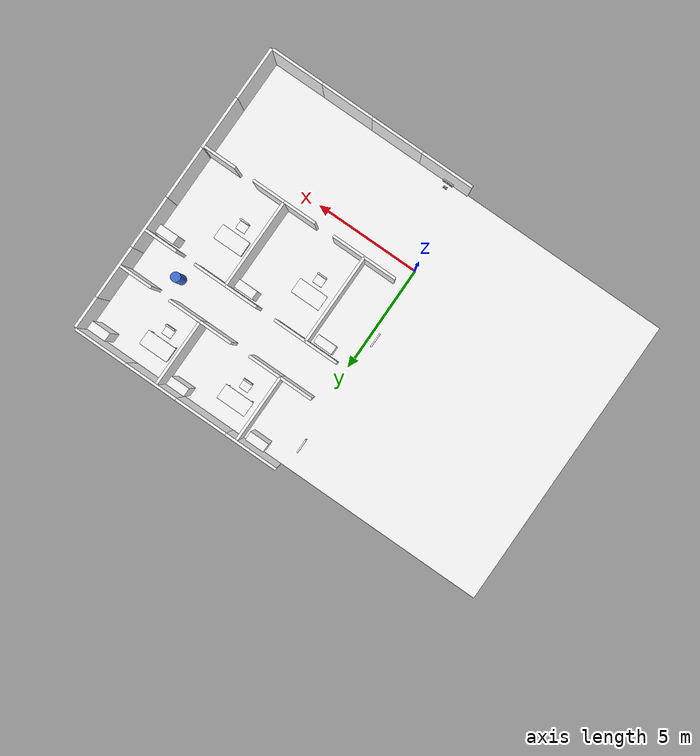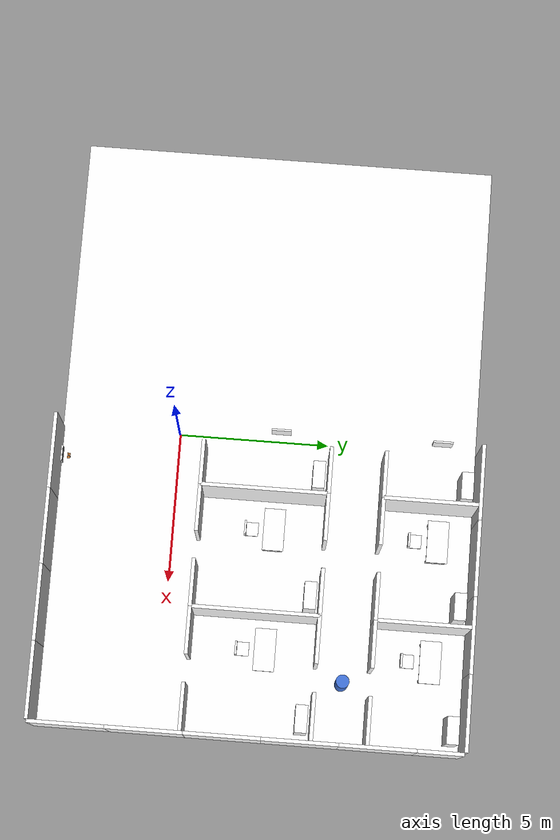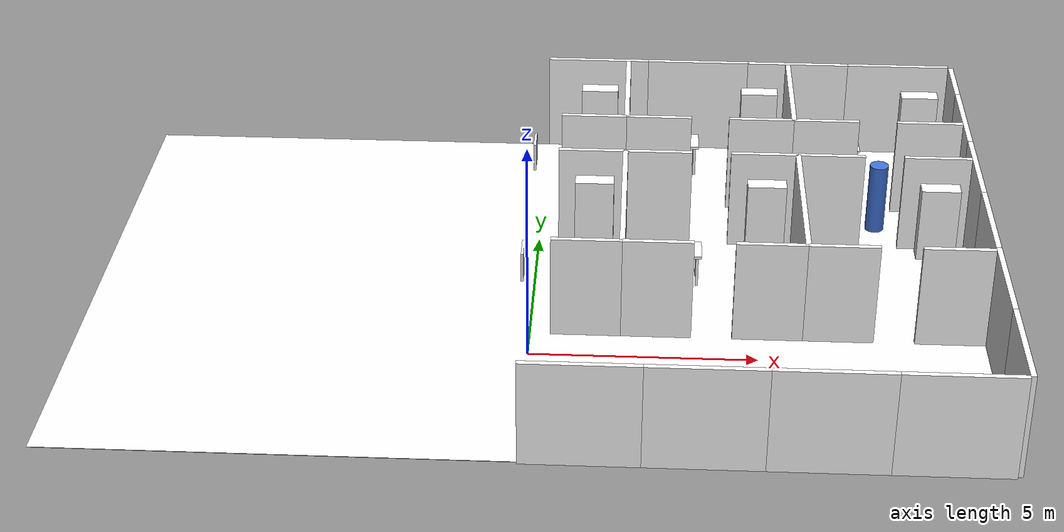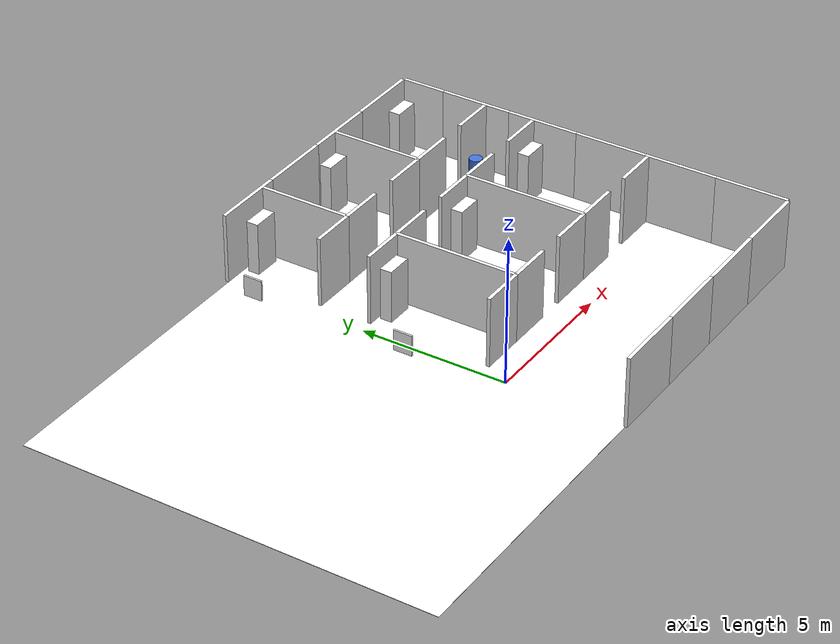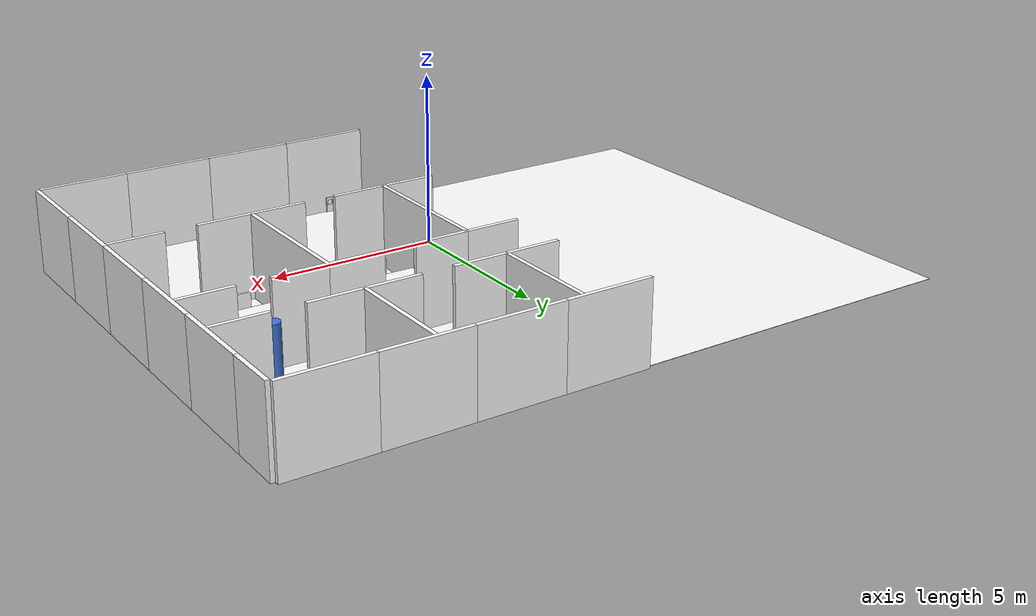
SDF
<sdf version="1.9">
 <world name="office">
  <model name="ground_plane">
   <static>true</static>
   <link name="link">
    <collision name="collision">
     <geometry><plane><normal>0 0 1</normal><size>100 100</size></plane></geometry>
     <surface><friction><ode><mu>1.0</mu><mu2>1.0</mu2></ode></friction></surface>
    </collision>
   </link>
  </model>
  <model name="floor">
   <static>true</static>
   <pose>0.00 3.00 -0.005 0 0 0</pose>
   <link name="link">
    <visual name="v">
     <geometry><box><size>20.0 14.0 0.01</size></box></geometry>
     <material>
      <diffuse>1 1 1 1</diffuse>
      <pbr>
       <metal>
        <albedo_map>model://room_materials/materials/textures/floor.png</albedo_map>
        <roughness>0.95</roughness>
       </metal>
      </pbr>
     </material>
    </visual>
   </link>
  </model>
  <model name="w_s8">
   <static>true</static>
   <pose>1.2500 -4.0100 1.2000 0 0 0</pose>
   <link name="link">
    <collision name="c"><geometry><box><size>2.5000 0.1200 2.4000</size></box></geometry></collision>
    <visual name="v">
     <geometry><box><size>2.5000 0.1200 2.4000</size></box></geometry>
     <material>
      <diffuse>1 1 1 1</diffuse>
      <pbr>
       <metal>
        <albedo_map>model://room_materials/materials/textures/office_008.png</albedo_map>
        <roughness>0.92</roughness>
       </metal>
      </pbr>
     </material>
    </visual>
   </link>
  </model>
  <model name="w_n9">
   <static>true</static>
   <pose>1.2500 10.0600 1.2000 0 0 0</pose>
   <link name="link">
    <collision name="c"><geometry><box><size>2.5000 0.1200 2.4000</size></box></geometry></collision>
    <visual name="v">
     <geometry><box><size>2.5000 0.1200 2.4000</size></box></geometry>
     <material>
      <diffuse>1 1 1 1</diffuse>
      <pbr>
       <metal>
        <albedo_map>model://room_materials/materials/textures/office_009.png</albedo_map>
        <roughness>0.92</roughness>
       </metal>
      </pbr>
     </material>
    </visual>
   </link>
  </model>
  <model name="w_s10">
   <static>true</static>
   <pose>3.7500 -4.0100 1.2000 0 0 0</pose>
   <link name="link">
    <collision name="c"><geometry><box><size>2.5000 0.1200 2.4000</size></box></geometry></collision>
    <visual name="v">
     <geometry><box><size>2.5000 0.1200 2.4000</size></box></geometry>
     <material>
      <diffuse>1 1 1 1</diffuse>
      <pbr>
       <metal>
        <albedo_map>model://room_materials/materials/textures/office_010.png</albedo_map>
        <roughness>0.92</roughness>
       </metal>
      </pbr>
     </material>
    </visual>
   </link>
  </model>
  <model name="w_n11">
   <static>true</static>
   <pose>3.7500 10.0600 1.2000 0 0 0</pose>
   <link name="link">
    <collision name="c"><geometry><box><size>2.5000 0.1200 2.4000</size></box></geometry></collision>
    <visual name="v">
     <geometry><box><size>2.5000 0.1200 2.4000</size></box></geometry>
     <material>
      <diffuse>1 1 1 1</diffuse>
      <pbr>
       <metal>
        <albedo_map>model://room_materials/materials/textures/office_011.png</albedo_map>
        <roughness>0.92</roughness>
       </metal>
      </pbr>
     </material>
    </visual>
   </link>
  </model>
  <model name="w_s12">
   <static>true</static>
   <pose>6.2500 -4.0100 1.2000 0 0 0</pose>
   <link name="link">
    <collision name="c"><geometry><box><size>2.5000 0.1200 2.4000</size></box></geometry></collision>
    <visual name="v">
     <geometry><box><size>2.5000 0.1200 2.4000</size></box></geometry>
     <material>
      <diffuse>1 1 1 1</diffuse>
      <pbr>
       <metal>
        <albedo_map>model://room_materials/materials/textures/office_012.png</albedo_map>
        <roughness>0.92</roughness>
       </metal>
      </pbr>
     </material>
    </visual>
   </link>
  </model>
  <model name="w_n13">
   <static>true</static>
   <pose>6.2500 10.0600 1.2000 0 0 0</pose>
   <link name="link">
    <collision name="c"><geometry><box><size>2.5000 0.1200 2.4000</size></box></geometry></collision>
    <visual name="v">
     <geometry><box><size>2.5000 0.1200 2.4000</size></box></geometry>
     <material>
      <diffuse>1 1 1 1</diffuse>
      <pbr>
       <metal>
        <albedo_map>model://room_materials/materials/textures/office_013.png</albedo_map>
        <roughness>0.92</roughness>
       </metal>
      </pbr>
     </material>
    </visual>
   </link>
  </model>
  <model name="w_s14">
   <static>true</static>
   <pose>8.7500 -4.0100 1.2000 0 0 0</pose>
   <link name="link">
    <collision name="c"><geometry><box><size>2.5000 0.1200 2.4000</size></box></geometry></collision>
    <visual name="v">
     <geometry><box><size>2.5000 0.1200 2.4000</size></box></geometry>
     <material>
      <diffuse>1 1 1 1</diffuse>
      <pbr>
       <metal>
        <albedo_map>model://room_materials/materials/textures/office_014.png</albedo_map>
        <roughness>0.92</roughness>
       </metal>
      </pbr>
     </material>
    </visual>
   </link>
  </model>
  <model name="w_n15">
   <static>true</static>
   <pose>8.7500 10.0600 1.2000 0 0 0</pose>
   <link name="link">
    <collision name="c"><geometry><box><size>2.5000 0.1200 2.4000</size></box></geometry></collision>
    <visual name="v">
     <geometry><box><size>2.5000 0.1200 2.4000</size></box></geometry>
     <material>
      <diffuse>1 1 1 1</diffuse>
      <pbr>
       <metal>
        <albedo_map>model://room_materials/materials/textures/office_015.png</albedo_map>
        <roughness>0.92</roughness>
       </metal>
      </pbr>
     </material>
    </visual>
   </link>
  </model>
  <model name="w_e17">
   <static>true</static>
   <pose>10.0600 -2.7500 1.2000 0 0 0</pose>
   <link name="link">
    <collision name="c"><geometry><box><size>0.1200 2.5000 2.4000</size></box></geometry></collision>
    <visual name="v">
     <geometry><box><size>0.1200 2.5000 2.4000</size></box></geometry>
     <material>
      <diffuse>1 1 1 1</diffuse>
      <pbr>
       <metal>
        <albedo_map>model://room_materials/materials/textures/office_017.png</albedo_map>
        <roughness>0.92</roughness>
       </metal>
      </pbr>
     </material>
    </visual>
   </link>
  </model>
  <model name="w_e19">
   <static>true</static>
   <pose>10.0600 -0.2500 1.2000 0 0 0</pose>
   <link name="link">
    <collision name="c"><geometry><box><size>0.1200 2.5000 2.4000</size></box></geometry></collision>
    <visual name="v">
     <geometry><box><size>0.1200 2.5000 2.4000</size></box></geometry>
     <material>
      <diffuse>1 1 1 1</diffuse>
      <pbr>
       <metal>
        <albedo_map>model://room_materials/materials/textures/office_019.png</albedo_map>
        <roughness>0.92</roughness>
       </metal>
      </pbr>
     </material>
    </visual>
   </link>
  </model>
  <model name="w_e21">
   <static>true</static>
   <pose>10.0600 2.2500 1.2000 0 0 0</pose>
   <link name="link">
    <collision name="c"><geometry><box><size>0.1200 2.5000 2.4000</size></box></geometry></collision>
    <visual name="v">
     <geometry><box><size>0.1200 2.5000 2.4000</size></box></geometry>
     <material>
      <diffuse>1 1 1 1</diffuse>
      <pbr>
       <metal>
        <albedo_map>model://room_materials/materials/textures/office_021.png</albedo_map>
        <roughness>0.92</roughness>
       </metal>
      </pbr>
     </material>
    </visual>
   </link>
  </model>
  <model name="w_e23">
   <static>true</static>
   <pose>10.0600 4.7500 1.2000 0 0 0</pose>
   <link name="link">
    <collision name="c"><geometry><box><size>0.1200 2.5000 2.4000</size></box></geometry></collision>
    <visual name="v">
     <geometry><box><size>0.1200 2.5000 2.4000</size></box></geometry>
     <material>
      <diffuse>1 1 1 1</diffuse>
      <pbr>
       <metal>
        <albedo_map>model://room_materials/materials/textures/office_023.png</albedo_map>
        <roughness>0.92</roughness>
       </metal>
      </pbr>
     </material>
    </visual>
   </link>
  </model>
  <model name="w_e25">
   <static>true</static>
   <pose>10.0600 7.2500 1.2000 0 0 0</pose>
   <link name="link">
    <collision name="c"><geometry><box><size>0.1200 2.5000 2.4000</size></box></geometry></collision>
    <visual name="v">
     <geometry><box><size>0.1200 2.5000 2.4000</size></box></geometry>
     <material>
      <diffuse>1 1 1 1</diffuse>
      <pbr>
       <metal>
        <albedo_map>model://room_materials/materials/textures/office_025.png</albedo_map>
        <roughness>0.92</roughness>
       </metal>
      </pbr>
     </material>
    </visual>
   </link>
  </model>
  <model name="w_e27">
   <static>true</static>
   <pose>10.0600 9.2500 1.2000 0 0 0</pose>
   <link name="link">
    <collision name="c"><geometry><box><size>0.1200 1.5000 2.4000</size></box></geometry></collision>
    <visual name="v">
     <geometry><box><size>0.1200 1.5000 2.4000</size></box></geometry>
     <material>
      <diffuse>1 1 1 1</diffuse>
      <pbr>
       <metal>
        <albedo_map>model://room_materials/materials/textures/office_027.png</albedo_map>
        <roughness>0.92</roughness>
       </metal>
      </pbr>
     </material>
    </visual>
   </link>
  </model>
  <model name="cA_n_2b">
   <static>true</static>
   <pose>1.2250 0.9000 1.2000 0 0 0</pose>
   <link name="link">
    <collision name="c"><geometry><box><size>1.5500 0.1200 2.4000</size></box></geometry></collision>
    <visual name="v">
     <geometry><box><size>1.5500 0.1200 2.4000</size></box></geometry>
     <material>
      <diffuse>1 1 1 1</diffuse>
      <pbr>
       <metal>
        <albedo_map>model://room_materials/materials/textures/office_033.png</albedo_map>
        <roughness>0.92</roughness>
       </metal>
      </pbr>
     </material>
    </visual>
   </link>
  </model>
  <model name="cA_n_3a">
   <static>true</static>
   <pose>2.7750 0.9000 1.2000 0 0 0</pose>
   <link name="link">
    <collision name="c"><geometry><box><size>1.5500 0.1200 2.4000</size></box></geometry></collision>
    <visual name="v">
     <geometry><box><size>1.5500 0.1200 2.4000</size></box></geometry>
     <material>
      <diffuse>1 1 1 1</diffuse>
      <pbr>
       <metal>
        <albedo_map>model://room_materials/materials/textures/office_034.png</albedo_map>
        <roughness>0.92</roughness>
       </metal>
      </pbr>
     </material>
    </visual>
   </link>
  </model>
  <model name="cA_n_3b">
   <static>true</static>
   <pose>5.2250 0.9000 1.2000 0 0 0</pose>
   <link name="link">
    <collision name="c"><geometry><box><size>1.5500 0.1200 2.4000</size></box></geometry></collision>
    <visual name="v">
     <geometry><box><size>1.5500 0.1200 2.4000</size></box></geometry>
     <material>
      <diffuse>1 1 1 1</diffuse>
      <pbr>
       <metal>
        <albedo_map>model://room_materials/materials/textures/office_035.png</albedo_map>
        <roughness>0.92</roughness>
       </metal>
      </pbr>
     </material>
    </visual>
   </link>
  </model>
  <model name="cA_n_4a">
   <static>true</static>
   <pose>6.7750 0.9000 1.2000 0 0 0</pose>
   <link name="link">
    <collision name="c"><geometry><box><size>1.5500 0.1200 2.4000</size></box></geometry></collision>
    <visual name="v">
     <geometry><box><size>1.5500 0.1200 2.4000</size></box></geometry>
     <material>
      <diffuse>1 1 1 1</diffuse>
      <pbr>
       <metal>
        <albedo_map>model://room_materials/materials/textures/office_036.png</albedo_map>
        <roughness>0.92</roughness>
       </metal>
      </pbr>
     </material>
    </visual>
   </link>
  </model>
  <model name="cA_n_4b">
   <static>true</static>
   <pose>9.2250 0.9000 1.2000 0 0 0</pose>
   <link name="link">
    <collision name="c"><geometry><box><size>1.5500 0.1200 2.4000</size></box></geometry></collision>
    <visual name="v">
     <geometry><box><size>1.5500 0.1200 2.4000</size></box></geometry>
     <material>
      <diffuse>1 1 1 1</diffuse>
      <pbr>
       <metal>
        <albedo_map>model://room_materials/materials/textures/office_037.png</albedo_map>
        <roughness>0.92</roughness>
       </metal>
      </pbr>
     </material>
    </visual>
   </link>
  </model>
  <model name="cB_s_2b">
   <static>true</static>
   <pose>1.2250 5.1000 1.2000 0 0 0</pose>
   <link name="link">
    <collision name="c"><geometry><box><size>1.5500 0.1200 2.4000</size></box></geometry></collision>
    <visual name="v">
     <geometry><box><size>1.5500 0.1200 2.4000</size></box></geometry>
     <material>
      <diffuse>1 1 1 1</diffuse>
      <pbr>
       <metal>
        <albedo_map>model://room_materials/materials/textures/office_043.png</albedo_map>
        <roughness>0.92</roughness>
       </metal>
      </pbr>
     </material>
    </visual>
   </link>
  </model>
  <model name="cB_s_3a">
   <static>true</static>
   <pose>2.7750 5.1000 1.2000 0 0 0</pose>
   <link name="link">
    <collision name="c"><geometry><box><size>1.5500 0.1200 2.4000</size></box></geometry></collision>
    <visual name="v">
     <geometry><box><size>1.5500 0.1200 2.4000</size></box></geometry>
     <material>
      <diffuse>1 1 1 1</diffuse>
      <pbr>
       <metal>
        <albedo_map>model://room_materials/materials/textures/office_044.png</albedo_map>
        <roughness>0.92</roughness>
       </metal>
      </pbr>
     </material>
    </visual>
   </link>
  </model>
  <model name="cB_s_3b">
   <static>true</static>
   <pose>5.2250 5.1000 1.2000 0 0 0</pose>
   <link name="link">
    <collision name="c"><geometry><box><size>1.5500 0.1200 2.4000</size></box></geometry></collision>
    <visual name="v">
     <geometry><box><size>1.5500 0.1200 2.4000</size></box></geometry>
     <material>
      <diffuse>1 1 1 1</diffuse>
      <pbr>
       <metal>
        <albedo_map>model://room_materials/materials/textures/office_045.png</albedo_map>
        <roughness>0.92</roughness>
       </metal>
      </pbr>
     </material>
    </visual>
   </link>
  </model>
  <model name="cB_s_4a">
   <static>true</static>
   <pose>6.7750 5.1000 1.2000 0 0 0</pose>
   <link name="link">
    <collision name="c"><geometry><box><size>1.5500 0.1200 2.4000</size></box></geometry></collision>
    <visual name="v">
     <geometry><box><size>1.5500 0.1200 2.4000</size></box></geometry>
     <material>
      <diffuse>1 1 1 1</diffuse>
      <pbr>
       <metal>
        <albedo_map>model://room_materials/materials/textures/office_046.png</albedo_map>
        <roughness>0.92</roughness>
       </metal>
      </pbr>
     </material>
    </visual>
   </link>
  </model>
  <model name="cB_s_4b">
   <static>true</static>
   <pose>9.2250 5.1000 1.2000 0 0 0</pose>
   <link name="link">
    <collision name="c"><geometry><box><size>1.5500 0.1200 2.4000</size></box></geometry></collision>
    <visual name="v">
     <geometry><box><size>1.5500 0.1200 2.4000</size></box></geometry>
     <material>
      <diffuse>1 1 1 1</diffuse>
      <pbr>
       <metal>
        <albedo_map>model://room_materials/materials/textures/office_047.png</albedo_map>
        <roughness>0.92</roughness>
       </metal>
      </pbr>
     </material>
    </visual>
   </link>
  </model>
  <model name="cB_n_2b">
   <static>true</static>
   <pose>1.2250 6.9000 1.2000 0 0 0</pose>
   <link name="link">
    <collision name="c"><geometry><box><size>1.5500 0.1200 2.4000</size></box></geometry></collision>
    <visual name="v">
     <geometry><box><size>1.5500 0.1200 2.4000</size></box></geometry>
     <material>
      <diffuse>1 1 1 1</diffuse>
      <pbr>
       <metal>
        <albedo_map>model://room_materials/materials/textures/office_053.png</albedo_map>
        <roughness>0.92</roughness>
       </metal>
      </pbr>
     </material>
    </visual>
   </link>
  </model>
  <model name="cB_n_3a">
   <static>true</static>
   <pose>2.7750 6.9000 1.2000 0 0 0</pose>
   <link name="link">
    <collision name="c"><geometry><box><size>1.5500 0.1200 2.4000</size></box></geometry></collision>
    <visual name="v">
     <geometry><box><size>1.5500 0.1200 2.4000</size></box></geometry>
     <material>
      <diffuse>1 1 1 1</diffuse>
      <pbr>
       <metal>
        <albedo_map>model://room_materials/materials/textures/office_054.png</albedo_map>
        <roughness>0.92</roughness>
       </metal>
      </pbr>
     </material>
    </visual>
   </link>
  </model>
  <model name="cB_n_3b">
   <static>true</static>
   <pose>5.2250 6.9000 1.2000 0 0 0</pose>
   <link name="link">
    <collision name="c"><geometry><box><size>1.5500 0.1200 2.4000</size></box></geometry></collision>
    <visual name="v">
     <geometry><box><size>1.5500 0.1200 2.4000</size></box></geometry>
     <material>
      <diffuse>1 1 1 1</diffuse>
      <pbr>
       <metal>
        <albedo_map>model://room_materials/materials/textures/office_055.png</albedo_map>
        <roughness>0.92</roughness>
       </metal>
      </pbr>
     </material>
    </visual>
   </link>
  </model>
  <model name="cB_n_4a">
   <static>true</static>
   <pose>6.7750 6.9000 1.2000 0 0 0</pose>
   <link name="link">
    <collision name="c"><geometry><box><size>1.5500 0.1200 2.4000</size></box></geometry></collision>
    <visual name="v">
     <geometry><box><size>1.5500 0.1200 2.4000</size></box></geometry>
     <material>
      <diffuse>1 1 1 1</diffuse>
      <pbr>
       <metal>
        <albedo_map>model://room_materials/materials/textures/office_056.png</albedo_map>
        <roughness>0.92</roughness>
       </metal>
      </pbr>
     </material>
    </visual>
   </link>
  </model>
  <model name="cB_n_4b">
   <static>true</static>
   <pose>9.2250 6.9000 1.2000 0 0 0</pose>
   <link name="link">
    <collision name="c"><geometry><box><size>1.5500 0.1200 2.4000</size></box></geometry></collision>
    <visual name="v">
     <geometry><box><size>1.5500 0.1200 2.4000</size></box></geometry>
     <material>
      <diffuse>1 1 1 1</diffuse>
      <pbr>
       <metal>
        <albedo_map>model://room_materials/materials/textures/office_057.png</albedo_map>
        <roughness>0.92</roughness>
       </metal>
      </pbr>
     </material>
    </visual>
   </link>
  </model>
  <model name="p1_2">
   <static>true</static>
   <pose>2.0000 3.0000 1.2000 0 0 0</pose>
   <link name="link">
    <collision name="c"><geometry><box><size>0.1200 4.2000 2.4000</size></box></geometry></collision>
    <visual name="v">
     <geometry><box><size>0.1200 4.2000 2.4000</size></box></geometry>
     <material>
      <diffuse>1 1 1 1</diffuse>
      <pbr>
       <metal>
        <albedo_map>model://room_materials/materials/textures/office_062.png</albedo_map>
        <roughness>0.92</roughness>
       </metal>
      </pbr>
     </material>
    </visual>
   </link>
  </model>
  <model name="p2_2">
   <static>true</static>
   <pose>2.0000 8.4500 1.2000 0 0 0</pose>
   <link name="link">
    <collision name="c"><geometry><box><size>0.1200 3.1000 2.4000</size></box></geometry></collision>
    <visual name="v">
     <geometry><box><size>0.1200 3.1000 2.4000</size></box></geometry>
     <material>
      <diffuse>1 1 1 1</diffuse>
      <pbr>
       <metal>
        <albedo_map>model://room_materials/materials/textures/office_063.png</albedo_map>
        <roughness>0.92</roughness>
       </metal>
      </pbr>
     </material>
    </visual>
   </link>
  </model>
  <model name="p1_3">
   <static>true</static>
   <pose>6.0000 3.0000 1.2000 0 0 0</pose>
   <link name="link">
    <collision name="c"><geometry><box><size>0.1200 4.2000 2.4000</size></box></geometry></collision>
    <visual name="v">
     <geometry><box><size>0.1200 4.2000 2.4000</size></box></geometry>
     <material>
      <diffuse>1 1 1 1</diffuse>
      <pbr>
       <metal>
        <albedo_map>model://room_materials/materials/textures/office_064.png</albedo_map>
        <roughness>0.92</roughness>
       </metal>
      </pbr>
     </material>
    </visual>
   </link>
  </model>
  <model name="p2_3">
   <static>true</static>
   <pose>6.0000 8.4500 1.2000 0 0 0</pose>
   <link name="link">
    <collision name="c"><geometry><box><size>0.1200 3.1000 2.4000</size></box></geometry></collision>
    <visual name="v">
     <geometry><box><size>0.1200 3.1000 2.4000</size></box></geometry>
     <material>
      <diffuse>1 1 1 1</diffuse>
      <pbr>
       <metal>
        <albedo_map>model://room_materials/materials/textures/office_065.png</albedo_map>
        <roughness>0.92</roughness>
       </metal>
      </pbr>
     </material>
    </visual>
   </link>
  </model>
  <model name="desk_2_l2">
   <static>true</static>
   <pose>-0.300 3.400 0.360 0 0 0</pose>
   <link name="link">
    <collision name="c"><geometry><box><size>0.060 0.660 0.720</size></box></geometry></collision>
    <visual name="v">
     <geometry><box><size>0.060 0.660 0.720</size></box></geometry>
     <material>
      <diffuse>1 1 1 1</diffuse>
      <pbr>
       <metal>
        <albedo_map>model://room_materials/materials/textures/crate.png</albedo_map>
        <roughness>0.92</roughness>
       </metal>
      </pbr>
     </material>
    </visual>
   </link>
  </model>
  <model name="shelf_2">
   <static>true</static>
   <pose>1.300 4.750 0.900 0 0 0</pose>
   <link name="link">
    <collision name="c"><geometry><box><size>0.900 0.400 1.800</size></box></geometry></collision>
    <visual name="v">
     <geometry><box><size>0.900 0.400 1.800</size></box></geometry>
     <material>
      <diffuse>1 1 1 1</diffuse>
      <pbr>
       <metal>
        <albedo_map>model://room_materials/materials/textures/poster3.png</albedo_map>
        <roughness>0.92</roughness>
       </metal>
      </pbr>
     </material>
    </visual>
   </link>
  </model>
  <model name="desk_3">
   <static>true</static>
   <pose>3.100 3.400 0.750 0 0 0</pose>
   <link name="link">
    <collision name="c"><geometry><box><size>1.400 0.700 0.060</size></box></geometry></collision>
    <visual name="v">
     <geometry><box><size>1.400 0.700 0.060</size></box></geometry>
     <material>
      <diffuse>1 1 1 1</diffuse>
      <pbr>
       <metal>
        <albedo_map>model://room_materials/materials/textures/poster4.png</albedo_map>
        <roughness>0.92</roughness>
       </metal>
      </pbr>
     </material>
    </visual>
   </link>
  </model>
  <model name="desk_3_l1">
   <static>true</static>
   <pose>2.500 3.400 0.360 0 0 0</pose>
   <link name="link">
    <collision name="c"><geometry><box><size>0.060 0.660 0.720</size></box></geometry></collision>
    <visual name="v">
     <geometry><box><size>0.060 0.660 0.720</size></box></geometry>
     <material>
      <diffuse>1 1 1 1</diffuse>
      <pbr>
       <metal>
        <albedo_map>model://room_materials/materials/textures/crate.png</albedo_map>
        <roughness>0.92</roughness>
       </metal>
      </pbr>
     </material>
    </visual>
   </link>
  </model>
  <model name="desk_3_l2">
   <static>true</static>
   <pose>3.700 3.400 0.360 0 0 0</pose>
   <link name="link">
    <collision name="c"><geometry><box><size>0.060 0.660 0.720</size></box></geometry></collision>
    <visual name="v">
     <geometry><box><size>0.060 0.660 0.720</size></box></geometry>
     <material>
      <diffuse>1 1 1 1</diffuse>
      <pbr>
       <metal>
        <albedo_map>model://room_materials/materials/textures/crate.png</albedo_map>
        <roughness>0.92</roughness>
       </metal>
      </pbr>
     </material>
    </visual>
   </link>
  </model>
  <model name="chair_3">
   <static>true</static>
   <pose>3.100 2.650 0.455 0 0 0</pose>
   <link name="link">
    <collision name="c"><geometry><box><size>0.450 0.450 0.050</size></box></geometry></collision>
    <visual name="v">
     <geometry><box><size>0.450 0.450 0.050</size></box></geometry>
     <material>
      <diffuse>1 1 1 1</diffuse>
      <pbr>
       <metal>
        <albedo_map>model://room_materials/materials/textures/crate.png</albedo_map>
        <roughness>0.92</roughness>
       </metal>
      </pbr>
     </material>
    </visual>
   </link>
  </model>
  <model name="chair_3_b">
   <static>true</static>
   <pose>3.100 2.450 0.680 0 0 0</pose>
   <link name="link">
    <collision name="c"><geometry><box><size>0.450 0.060 0.500</size></box></geometry></collision>
    <visual name="v">
     <geometry><box><size>0.450 0.060 0.500</size></box></geometry>
     <material>
      <diffuse>1 1 1 1</diffuse>
      <pbr>
       <metal>
        <albedo_map>model://room_materials/materials/textures/poster4.png</albedo_map>
        <roughness>0.92</roughness>
       </metal>
      </pbr>
     </material>
    </visual>
   </link>
  </model>
  <model name="shelf_3">
   <static>true</static>
   <pose>5.300 4.750 0.900 0 0 0</pose>
   <link name="link">
    <collision name="c"><geometry><box><size>0.900 0.400 1.800</size></box></geometry></collision>
    <visual name="v">
     <geometry><box><size>0.900 0.400 1.800</size></box></geometry>
     <material>
      <diffuse>1 1 1 1</diffuse>
      <pbr>
       <metal>
        <albedo_map>model://room_materials/materials/textures/poster4.png</albedo_map>
        <roughness>0.92</roughness>
       </metal>
      </pbr>
     </material>
    </visual>
   </link>
  </model>
  <model name="desk_4">
   <static>true</static>
   <pose>7.100 3.400 0.750 0 0 0</pose>
   <link name="link">
    <collision name="c"><geometry><box><size>1.400 0.700 0.060</size></box></geometry></collision>
    <visual name="v">
     <geometry><box><size>1.400 0.700 0.060</size></box></geometry>
     <material>
      <diffuse>1 1 1 1</diffuse>
      <pbr>
       <metal>
        <albedo_map>model://room_materials/materials/textures/poster5.png</albedo_map>
        <roughness>0.92</roughness>
       </metal>
      </pbr>
     </material>
    </visual>
   </link>
  </model>
  <model name="desk_4_l1">
   <static>true</static>
   <pose>6.500 3.400 0.360 0 0 0</pose>
   <link name="link">
    <collision name="c"><geometry><box><size>0.060 0.660 0.720</size></box></geometry></collision>
    <visual name="v">
     <geometry><box><size>0.060 0.660 0.720</size></box></geometry>
     <material>
      <diffuse>1 1 1 1</diffuse>
      <pbr>
       <metal>
        <albedo_map>model://room_materials/materials/textures/crate.png</albedo_map>
        <roughness>0.92</roughness>
       </metal>
      </pbr>
     </material>
    </visual>
   </link>
  </model>
  <model name="desk_4_l2">
   <static>true</static>
   <pose>7.700 3.400 0.360 0 0 0</pose>
   <link name="link">
    <collision name="c"><geometry><box><size>0.060 0.660 0.720</size></box></geometry></collision>
    <visual name="v">
     <geometry><box><size>0.060 0.660 0.720</size></box></geometry>
     <material>
      <diffuse>1 1 1 1</diffuse>
      <pbr>
       <metal>
        <albedo_map>model://room_materials/materials/textures/crate.png</albedo_map>
        <roughness>0.92</roughness>
       </metal>
      </pbr>
     </material>
    </visual>
   </link>
  </model>
  <model name="chair_4">
   <static>true</static>
   <pose>7.100 2.650 0.455 0 0 0</pose>
   <link name="link">
    <collision name="c"><geometry><box><size>0.450 0.450 0.050</size></box></geometry></collision>
    <visual name="v">
     <geometry><box><size>0.450 0.450 0.050</size></box></geometry>
     <material>
      <diffuse>1 1 1 1</diffuse>
      <pbr>
       <metal>
        <albedo_map>model://room_materials/materials/textures/crate.png</albedo_map>
        <roughness>0.92</roughness>
       </metal>
      </pbr>
     </material>
    </visual>
   </link>
  </model>
  <model name="chair_4_b">
   <static>true</static>
   <pose>7.100 2.450 0.680 0 0 0</pose>
   <link name="link">
    <collision name="c"><geometry><box><size>0.450 0.060 0.500</size></box></geometry></collision>
    <visual name="v">
     <geometry><box><size>0.450 0.060 0.500</size></box></geometry>
     <material>
      <diffuse>1 1 1 1</diffuse>
      <pbr>
       <metal>
        <albedo_map>model://room_materials/materials/textures/poster5.png</albedo_map>
        <roughness>0.92</roughness>
       </metal>
      </pbr>
     </material>
    </visual>
   </link>
  </model>
  <model name="shelf_4">
   <static>true</static>
   <pose>9.300 4.750 0.900 0 0 0</pose>
   <link name="link">
    <collision name="c"><geometry><box><size>0.900 0.400 1.800</size></box></geometry></collision>
    <visual name="v">
     <geometry><box><size>0.900 0.400 1.800</size></box></geometry>
     <material>
      <diffuse>1 1 1 1</diffuse>
      <pbr>
       <metal>
        <albedo_map>model://room_materials/materials/textures/poster5.png</albedo_map>
        <roughness>0.92</roughness>
       </metal>
      </pbr>
     </material>
    </visual>
   </link>
  </model>
  <model name="desk_7_l2">
   <static>true</static>
   <pose>-0.300 8.850 0.360 0 0 0</pose>
   <link name="link">
    <collision name="c"><geometry><box><size>0.060 0.660 0.720</size></box></geometry></collision>
    <visual name="v">
     <geometry><box><size>0.060 0.660 0.720</size></box></geometry>
     <material>
      <diffuse>1 1 1 1</diffuse>
      <pbr>
       <metal>
        <albedo_map>model://room_materials/materials/textures/crate.png</albedo_map>
        <roughness>0.92</roughness>
       </metal>
      </pbr>
     </material>
    </visual>
   </link>
  </model>
  <model name="shelf_7">
   <static>true</static>
   <pose>1.300 9.650 0.900 0 0 0</pose>
   <link name="link">
    <collision name="c"><geometry><box><size>0.900 0.400 1.800</size></box></geometry></collision>
    <visual name="v">
     <geometry><box><size>0.900 0.400 1.800</size></box></geometry>
     <material>
      <diffuse>1 1 1 1</diffuse>
      <pbr>
       <metal>
        <albedo_map>model://room_materials/materials/textures/poster8.png</albedo_map>
        <roughness>0.92</roughness>
       </metal>
      </pbr>
     </material>
    </visual>
   </link>
  </model>
  <model name="desk_8">
   <static>true</static>
   <pose>3.100 8.850 0.750 0 0 0</pose>
   <link name="link">
    <collision name="c"><geometry><box><size>1.400 0.700 0.060</size></box></geometry></collision>
    <visual name="v">
     <geometry><box><size>1.400 0.700 0.060</size></box></geometry>
     <material>
      <diffuse>1 1 1 1</diffuse>
      <pbr>
       <metal>
        <albedo_map>model://room_materials/materials/textures/poster1.png</albedo_map>
        <roughness>0.92</roughness>
       </metal>
      </pbr>
     </material>
    </visual>
   </link>
  </model>
  <model name="desk_8_l1">
   <static>true</static>
   <pose>2.500 8.850 0.360 0 0 0</pose>
   <link name="link">
    <collision name="c"><geometry><box><size>0.060 0.660 0.720</size></box></geometry></collision>
    <visual name="v">
     <geometry><box><size>0.060 0.660 0.720</size></box></geometry>
     <material>
      <diffuse>1 1 1 1</diffuse>
      <pbr>
       <metal>
        <albedo_map>model://room_materials/materials/textures/crate.png</albedo_map>
        <roughness>0.92</roughness>
       </metal>
      </pbr>
     </material>
    </visual>
   </link>
  </model>
  <model name="desk_8_l2">
   <static>true</static>
   <pose>3.700 8.850 0.360 0 0 0</pose>
   <link name="link">
    <collision name="c"><geometry><box><size>0.060 0.660 0.720</size></box></geometry></collision>
    <visual name="v">
     <geometry><box><size>0.060 0.660 0.720</size></box></geometry>
     <material>
      <diffuse>1 1 1 1</diffuse>
      <pbr>
       <metal>
        <albedo_map>model://room_materials/materials/textures/crate.png</albedo_map>
        <roughness>0.92</roughness>
       </metal>
      </pbr>
     </material>
    </visual>
   </link>
  </model>
  <model name="chair_8">
   <static>true</static>
   <pose>3.100 8.100 0.455 0 0 0</pose>
   <link name="link">
    <collision name="c"><geometry><box><size>0.450 0.450 0.050</size></box></geometry></collision>
    <visual name="v">
     <geometry><box><size>0.450 0.450 0.050</size></box></geometry>
     <material>
      <diffuse>1 1 1 1</diffuse>
      <pbr>
       <metal>
        <albedo_map>model://room_materials/materials/textures/crate.png</albedo_map>
        <roughness>0.92</roughness>
       </metal>
      </pbr>
     </material>
    </visual>
   </link>
  </model>
  <model name="chair_8_b">
   <static>true</static>
   <pose>3.100 7.900 0.680 0 0 0</pose>
   <link name="link">
    <collision name="c"><geometry><box><size>0.450 0.060 0.500</size></box></geometry></collision>
    <visual name="v">
     <geometry><box><size>0.450 0.060 0.500</size></box></geometry>
     <material>
      <diffuse>1 1 1 1</diffuse>
      <pbr>
       <metal>
        <albedo_map>model://room_materials/materials/textures/poster1.png</albedo_map>
        <roughness>0.92</roughness>
       </metal>
      </pbr>
     </material>
    </visual>
   </link>
  </model>
  <model name="shelf_8">
   <static>true</static>
   <pose>5.300 9.650 0.900 0 0 0</pose>
   <link name="link">
    <collision name="c"><geometry><box><size>0.900 0.400 1.800</size></box></geometry></collision>
    <visual name="v">
     <geometry><box><size>0.900 0.400 1.800</size></box></geometry>
     <material>
      <diffuse>1 1 1 1</diffuse>
      <pbr>
       <metal>
        <albedo_map>model://room_materials/materials/textures/poster1.png</albedo_map>
        <roughness>0.92</roughness>
       </metal>
      </pbr>
     </material>
    </visual>
   </link>
  </model>
  <model name="desk_9">
   <static>true</static>
   <pose>7.100 8.850 0.750 0 0 0</pose>
   <link name="link">
    <collision name="c"><geometry><box><size>1.400 0.700 0.060</size></box></geometry></collision>
    <visual name="v">
     <geometry><box><size>1.400 0.700 0.060</size></box></geometry>
     <material>
      <diffuse>1 1 1 1</diffuse>
      <pbr>
       <metal>
        <albedo_map>model://room_materials/materials/textures/poster2.png</albedo_map>
        <roughness>0.92</roughness>
       </metal>
      </pbr>
     </material>
    </visual>
   </link>
  </model>
  <model name="desk_9_l1">
   <static>true</static>
   <pose>6.500 8.850 0.360 0 0 0</pose>
   <link name="link">
    <collision name="c"><geometry><box><size>0.060 0.660 0.720</size></box></geometry></collision>
    <visual name="v">
     <geometry><box><size>0.060 0.660 0.720</size></box></geometry>
     <material>
      <diffuse>1 1 1 1</diffuse>
      <pbr>
       <metal>
        <albedo_map>model://room_materials/materials/textures/crate.png</albedo_map>
        <roughness>0.92</roughness>
       </metal>
      </pbr>
     </material>
    </visual>
   </link>
  </model>
  <model name="desk_9_l2">
   <static>true</static>
   <pose>7.700 8.850 0.360 0 0 0</pose>
   <link name="link">
    <collision name="c"><geometry><box><size>0.060 0.660 0.720</size></box></geometry></collision>
    <visual name="v">
     <geometry><box><size>0.060 0.660 0.720</size></box></geometry>
     <material>
      <diffuse>1 1 1 1</diffuse>
      <pbr>
       <metal>
        <albedo_map>model://room_materials/materials/textures/crate.png</albedo_map>
        <roughness>0.92</roughness>
       </metal>
      </pbr>
     </material>
    </visual>
   </link>
  </model>
  <model name="chair_9">
   <static>true</static>
   <pose>7.100 8.100 0.455 0 0 0</pose>
   <link name="link">
    <collision name="c"><geometry><box><size>0.450 0.450 0.050</size></box></geometry></collision>
    <visual name="v">
     <geometry><box><size>0.450 0.450 0.050</size></box></geometry>
     <material>
      <diffuse>1 1 1 1</diffuse>
      <pbr>
       <metal>
        <albedo_map>model://room_materials/materials/textures/crate.png</albedo_map>
        <roughness>0.92</roughness>
       </metal>
      </pbr>
     </material>
    </visual>
   </link>
  </model>
  <model name="chair_9_b">
   <static>true</static>
   <pose>7.100 7.900 0.680 0 0 0</pose>
   <link name="link">
    <collision name="c"><geometry><box><size>0.450 0.060 0.500</size></box></geometry></collision>
    <visual name="v">
     <geometry><box><size>0.450 0.060 0.500</size></box></geometry>
     <material>
      <diffuse>1 1 1 1</diffuse>
      <pbr>
       <metal>
        <albedo_map>model://room_materials/materials/textures/poster2.png</albedo_map>
        <roughness>0.92</roughness>
       </metal>
      </pbr>
     </material>
    </visual>
   </link>
  </model>
  <model name="shelf_9">
   <static>true</static>
   <pose>9.300 9.650 0.900 0 0 0</pose>
   <link name="link">
    <collision name="c"><geometry><box><size>0.900 0.400 1.800</size></box></geometry></collision>
    <visual name="v">
     <geometry><box><size>0.900 0.400 1.800</size></box></geometry>
     <material>
      <diffuse>1 1 1 1</diffuse>
      <pbr>
       <metal>
        <albedo_map>model://room_materials/materials/textures/poster2.png</albedo_map>
        <roughness>0.92</roughness>
       </metal>
      </pbr>
     </material>
    </visual>
   </link>
  </model>
  <model name="person_1">
   <pose>8.00 6.00 0.85 0 0 0</pose>
   <link name="link">
    <gravity>false</gravity>
    <inertial>
     <mass>70</mass>
     <inertia><ixx>200</ixx><iyy>200</iyy><izz>200</izz><ixy>0</ixy><ixz>0</ixz><iyz>0</iyz></inertia>
    </inertial>
    <collision name="c">
     <geometry><cylinder><radius>0.22</radius><length>1.70</length></cylinder></geometry>
    </collision>
    <visual name="v">
     <geometry><cylinder><radius>0.22</radius><length>1.70</length></cylinder></geometry>
     <material>
      <ambient>0.25 0.45 0.85 1</ambient>
      <diffuse>0.25 0.45 0.85 1</diffuse>
      <specular>0.2 0.2 0.2 1</specular>
     </material>
    </visual>
   </link>
   <plugin filename="gz-sim-velocity-control-system" name="gz::sim::systems::VelocityControl">
    <topic>/model/person_1/cmd_vel</topic>
   </plugin>
  </model>
  <model name="dock_station">
   <static>true</static>
   <link name="link">
    <visual name="dock_panel">
     <pose>1.0 -3.9250000000000003 0.225 0 0 0</pose>
     <geometry><box><size>0.52 0.05 0.45</size></box></geometry>
     <material>
      <diffuse>1 1 1 1</diffuse>
      <pbr>
       <metal>
        <albedo_map>model://room_materials/materials/textures/dock_body.png</albedo_map>
        <roughness>0.92</roughness>
       </metal>
      </pbr>
     </material>
    </visual>
    <collision name="dock_panel_c">
     <pose>1.0 -3.9250000000000003 0.225 0 0 0</pose>
     <geometry><box><size>0.52 0.05 0.45</size></box></geometry>
    </collision>
    <visual name="dock_marker_1">
     <pose>0.84 -3.898 0.31 0 0 0</pose>
     <geometry><box><size>0.14 0.008 0.14</size></box></geometry>
     <material>
      <diffuse>1 1 1 1</diffuse>
      <pbr>
       <metal>
        <albedo_map>model://room_materials/materials/textures/dock_marker_1.png</albedo_map>
        <roughness>0.92</roughness>
       </metal>
      </pbr>
     </material>
    </visual>
    <visual name="dock_marker_0">
     <pose>1.0 -3.898 0.31 0 0 0</pose>
     <geometry><box><size>0.14 0.008 0.14</size></box></geometry>
     <material>
      <diffuse>1 1 1 1</diffuse>
      <pbr>
       <metal>
        <albedo_map>model://room_materials/materials/textures/dock_marker_0.png</albedo_map>
        <roughness>0.92</roughness>
       </metal>
      </pbr>
     </material>
    </visual>
    <visual name="dock_marker_2">
     <pose>1.16 -3.898 0.31 0 0 0</pose>
     <geometry><box><size>0.14 0.008 0.14</size></box></geometry>
     <material>
      <diffuse>1 1 1 1</diffuse>
      <pbr>
       <metal>
        <albedo_map>model://room_materials/materials/textures/dock_marker_2.png</albedo_map>
        <roughness>0.92</roughness>
       </metal>
      </pbr>
     </material>
    </visual>
    <visual name="dock_plate_0">
     <pose>0.945 -3.72 0.02 0 0 0</pose>
     <geometry><box><size>0.075 0.1 0.04</size></box></geometry>
     <material><ambient>0.72 0.45 0.20 1</ambient><diffuse>0.72 0.45 0.20 1</diffuse></material>
    </visual>
    <collision name="dock_plate_0_c">
     <pose>0.945 -3.72 0.02 0 0 0</pose>
     <geometry><box><size>0.075 0.1 0.04</size></box></geometry>
    </collision>
    <visual name="dock_plate_1">
     <pose>1.055 -3.72 0.02 0 0 0</pose>
     <geometry><box><size>0.075 0.1 0.04</size></box></geometry>
     <material><ambient>0.72 0.45 0.20 1</ambient><diffuse>0.72 0.45 0.20 1</diffuse></material>
    </visual>
    <collision name="dock_plate_1_c">
     <pose>1.055 -3.72 0.02 0 0 0</pose>
     <geometry><box><size>0.075 0.1 0.04</size></box></geometry>
    </collision>
   </link>
  </model>
 </world>
</sdf>
